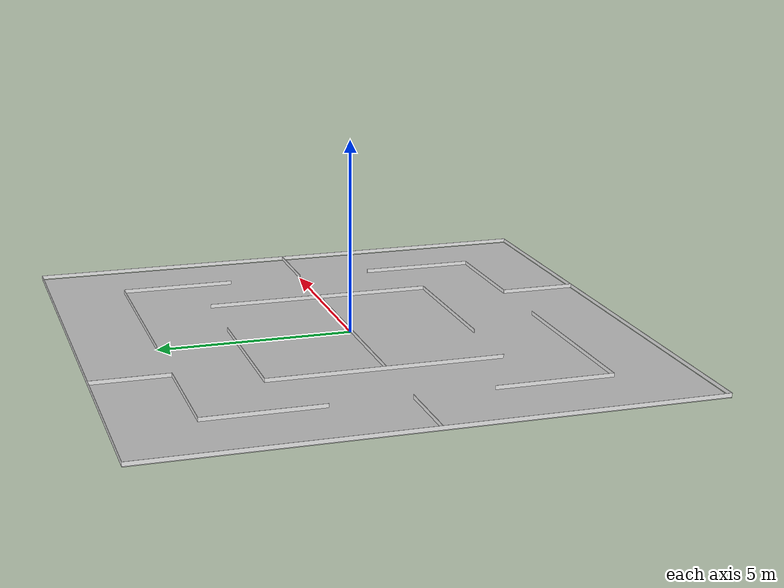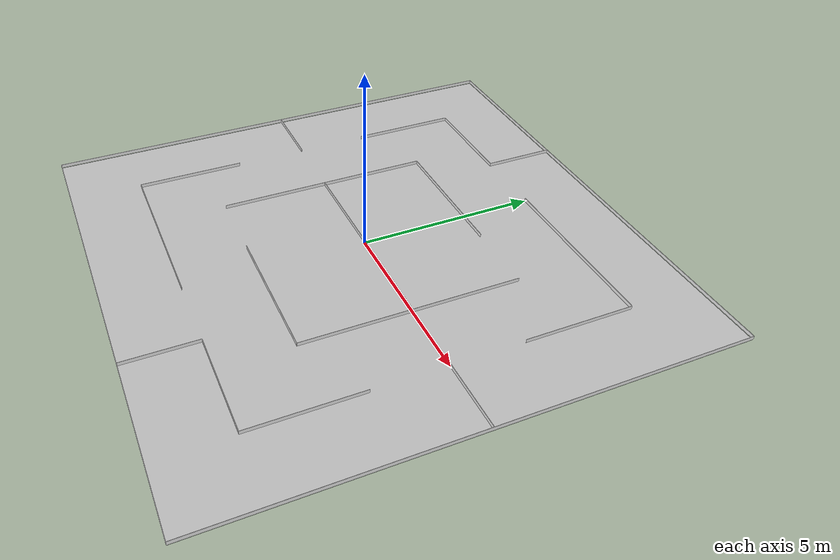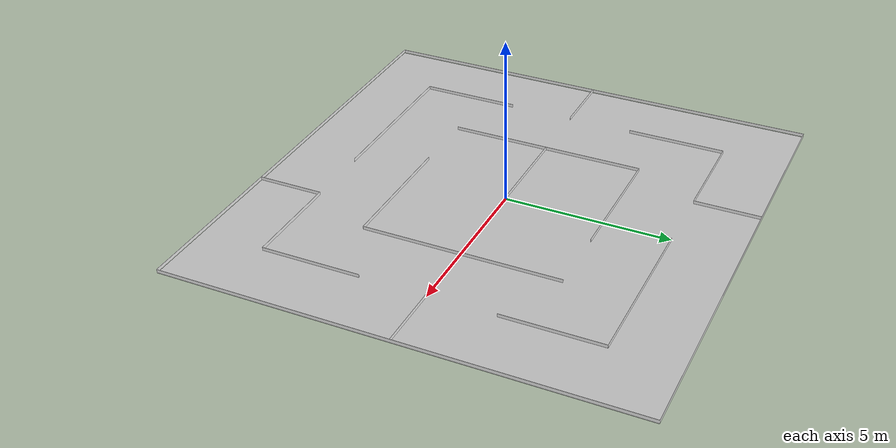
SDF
<?xml version="1.0"?>
<sdf version='1.6'>
    <world name='ril_agv_simulator'>
        <include>
            <uri>model://sun</uri>
        </include>
        <include>
            <uri>model://floor</uri>
        </include>
        <include>
            <uri>model://walls</uri>
        </include>
        <physics type='ode'>
            <max_step_size>0.001</max_step_size>
            <real_time_factor>1.000000</real_time_factor>
            <real_time_update_rate>1000.0</real_time_update_rate>
            <ode>
                <solver>
                    <type>quick</type>
                    <iters>200</iters>
                </solver>
            </ode>
        </physics>
    </world>
</sdf>

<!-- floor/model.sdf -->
<sdf version="1.6">
<model name="floor">
  <static>true</static>
    <link name="link">
      <collision name="collision">
        <geometry>
          <plane>
            <normal>0 0 1</normal>
            <size>14 14</size>
          </plane>
        </geometry>
        <surface>
          <friction>
            <ode>
              <mu>100</mu>
              <mu2>50</mu2>
            </ode>
          </friction>
        </surface>
      </collision>
      <visual name="visual">
        <cast_shadows>false</cast_shadows>
        <geometry>
          <plane>
            <normal>0 0 1</normal>
            <size>14 14</size>
          </plane>
        </geometry>
        <material>
          <script>
            <uri>model://floor/materials/scripts</uri>
            <uri>model://floor/materials/textures</uri>
            <name>Floor/Image</name>
          </script>
        </material>
      </visual>
    </link>
  </model>
</sdf>

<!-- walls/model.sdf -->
<sdf version="1.5">
  <model name="walls">
    <static>true</static>
    <link name="top">
      <pose>0 7 0.05 0 0 0</pose>
      <collision name="collision">
        <geometry>
          <box>
            <size>14 0.01 0.1</size>
          </box>
        </geometry>
        <surface>
          <friction>
            <ode>
              <mu>100</mu>
              <mu2>50</mu2>
            </ode>
          </friction>
        </surface>
      </collision>
      <visual name="visual">
        <cast_shadows>false</cast_shadows>
        <geometry>
          <box>
            <size>14 0.01 0.1</size>
          </box>
        </geometry>
        <material>
          <script>
            <uri>file://media/materials/scripts/gazebo.material</uri>
            <name>Gazebo/White</name>
          </script>
        </material>
      </visual>
    </link>
    <link name="bottom">
      <pose>0 -7 0.05 0 0 0</pose>
      <collision name="collision">
        <geometry>
          <box>
            <size>14 0.01 0.1</size>
          </box>
        </geometry>
        <surface>
          <friction>
            <ode>
              <mu>100</mu>
              <mu2>50</mu2>
            </ode>
          </friction>
        </surface>
      </collision>
      <visual name="visual">
        <cast_shadows>false</cast_shadows>
        <geometry>
          <box>
            <size>14 0.01 0.1</size>
          </box>
        </geometry>
        <material>
          <script>
            <uri>file://media/materials/scripts/gazebo.material</uri>
            <name>Gazebo/White</name>
          </script>
        </material>
      </visual>
    </link>
    <link name="left">
      <pose>-7 0 0.05 0 0 0</pose>
      <collision name="collision">
        <geometry>
          <box>
            <size>0.01 14 0.1</size>
          </box>
        </geometry>
        <surface>
          <friction>
            <ode>
              <mu>100</mu>
              <mu2>50</mu2>
            </ode>
          </friction>
        </surface>
      </collision>
      <visual name="visual">
        <cast_shadows>false</cast_shadows>
        <geometry>
          <box>
            <size>0.01 14 0.1</size>
          </box>
        </geometry>
        <material>
          <script>
            <uri>file://media/materials/scripts/gazebo.material</uri>
            <name>Gazebo/White</name>
          </script>
        </material>
      </visual>
    </link>
    <link name="right">
      <pose>7 0 0.05 0 0 0</pose>
      <collision name="collision">
        <geometry>
          <box>
            <size>0.01 14 0.1</size>
          </box>
        </geometry>
        <surface>
          <friction>
            <ode>
              <mu>100</mu>
              <mu2>50</mu2>
            </ode>
          </friction>
        </surface>
      </collision>
      <visual name="visual">
        <cast_shadows>false</cast_shadows>
        <geometry>
          <box>
            <size>0.01 14 0.1</size>
          </box>
        </geometry>
        <material>
          <script>
            <uri>file://media/materials/scripts/gazebo.material</uri>
            <name>Gazebo/White</name>
          </script>
        </material>
      </visual>
    </link>
    <link name="vert1">
      <pose>-5 3.5 0.05 0 0 0</pose>
      <collision name="collision">
        <geometry>
          <box>
            <size>0.01 3 0.1</size>
          </box>
        </geometry>
        <surface>
          <friction>
            <ode>
              <mu>100</mu>
              <mu2>50</mu2>
            </ode>
          </friction>
        </surface>
      </collision>
      <visual name="visual">
        <cast_shadows>false</cast_shadows>
        <geometry>
          <box>
            <size>0.01 3 0.1</size>
          </box>
        </geometry>
        <material>
          <script>
            <uri>file://media/materials/scripts/gazebo.material</uri>
            <name>Gazebo/White</name>
          </script>
        </material>
      </visual>
    </link>
    <link name="vert3">
      <pose>-2 6 0.05 0 0 0</pose>
      <collision name="collision">
        <geometry>
          <box>
            <size>0.01 2 0.1</size>
          </box>
        </geometry>
        <surface>
          <friction>
            <ode>
              <mu>100</mu>
              <mu2>50</mu2>
            </ode>
          </friction>
        </surface>
      </collision>
      <visual name="visual">
        <cast_shadows>false</cast_shadows>
        <geometry>
          <box>
            <size>0.01 2 0.1</size>
          </box>
        </geometry>
        <material>
          <script>
            <uri>file://media/materials/scripts/gazebo.material</uri>
            <name>Gazebo/White</name>
          </script>
        </material>
      </visual>
    </link>
    <link name="vert5">
      <pose>5 3.5 0.05 0 0 0</pose>
      <collision name="collision">
        <geometry>
          <box>
            <size>0.01 3 0.1</size>
          </box>
        </geometry>
        <surface>
          <friction>
            <ode>
              <mu>100</mu>
              <mu2>50</mu2>
            </ode>
          </friction>
        </surface>
      </collision>
      <visual name="visual">
        <cast_shadows>false</cast_shadows>
        <geometry>
          <box>
            <size>0.01 3 0.1</size>
          </box>
        </geometry>
        <material>
          <script>
            <uri>file://media/materials/scripts/gazebo.material</uri>
            <name>Gazebo/White</name>
          </script>
        </material>
      </visual>
    </link>
    <link name="vert7">
      <pose>5 -3.5 0.05 0 0 0</pose>
      <collision name="collision">
        <geometry>
          <box>
            <size>0.01 3 0.1</size>
          </box>
        </geometry>
        <surface>
          <friction>
            <ode>
              <mu>100</mu>
              <mu2>50</mu2>
            </ode>
          </friction>
        </surface>
      </collision>
      <visual name="visual">
        <cast_shadows>false</cast_shadows>
        <geometry>
          <box>
            <size>0.01 3 0.1</size>
          </box>
        </geometry>
        <material>
          <script>
            <uri>file://media/materials/scripts/gazebo.material</uri>
            <name>Gazebo/White</name>
          </script>
        </material>
      </visual>
    </link>
    <link name="vert9">
      <pose>2 -6 0.05 0 0 0</pose>
      <collision name="collision">
        <geometry>
          <box>
            <size>0.01 2 0.1</size>
          </box>
        </geometry>
        <surface>
          <friction>
            <ode>
              <mu>100</mu>
              <mu2>50</mu2>
            </ode>
          </friction>
        </surface>
      </collision>
      <visual name="visual">
        <cast_shadows>false</cast_shadows>
        <geometry>
          <box>
            <size>0.01 2 0.1</size>
          </box>
        </geometry>
        <material>
          <script>
            <uri>file://media/materials/scripts/gazebo.material</uri>
            <name>Gazebo/White</name>
          </script>
        </material>
      </visual>
    </link>
    <link name="vert11">
      <pose>-5 -3.5 0.05 0 0 0</pose>
      <collision name="collision">
        <geometry>
          <box>
            <size>0.01 3 0.1</size>
          </box>
        </geometry>
        <surface>
          <friction>
            <ode>
              <mu>100</mu>
              <mu2>50</mu2>
            </ode>
          </friction>
        </surface>
      </collision>
      <visual name="visual">
        <cast_shadows>false</cast_shadows>
        <geometry>
          <box>
            <size>0.01 3 0.1</size>
          </box>
        </geometry>
        <material>
          <script>
            <uri>file://media/materials/scripts/gazebo.material</uri>
            <name>Gazebo/White</name>
          </script>
        </material>
      </visual>
    </link>
    <link name="vert13">
      <pose>-3 0 0.05 0 0 0</pose>
      <collision name="collision">
        <geometry>
          <box>
            <size>0.01 6 0.1</size>
          </box>
        </geometry>
        <surface>
          <friction>
            <ode>
              <mu>100</mu>
              <mu2>50</mu2>
            </ode>
          </friction>
        </surface>
      </collision>
      <visual name="visual">
        <cast_shadows>false</cast_shadows>
        <geometry>
          <box>
            <size>0.01 6 0.1</size>
          </box>
        </geometry>
        <material>
          <script>
            <uri>file://media/materials/scripts/gazebo.material</uri>
            <name>Gazebo/White</name>
          </script>
        </material>
      </visual>
    </link>
    <link name="vert16">
      <pose>3 0 0.05 0 0 0</pose>
      <collision name="collision">
        <geometry>
          <box>
            <size>0.01 6 0.1</size>
          </box>
        </geometry>
        <surface>
          <friction>
            <ode>
              <mu>100</mu>
              <mu2>50</mu2>
            </ode>
          </friction>
        </surface>
      </collision>
      <visual name="visual">
        <cast_shadows>false</cast_shadows>
        <geometry>
          <box>
            <size>0.01 6 0.1</size>
          </box>
        </geometry>
        <material>
          <script>
            <uri>file://media/materials/scripts/gazebo.material</uri>
            <name>Gazebo/White</name>
          </script>
        </material>
      </visual>
    </link>
    <link name="hori2">
      <pose>-3.5 5 0.05 0 0 0</pose>
      <collision name="collision">
        <geometry>
          <box>
            <size>3 0.01 0.1</size>
          </box>
        </geometry>
        <surface>
          <friction>
            <ode>
              <mu>100</mu>
              <mu2>50</mu2>
            </ode>
          </friction>
        </surface>
      </collision>
      <visual name="visual">
        <cast_shadows>false</cast_shadows>
        <geometry>
          <box>
            <size>3 0.01 0.1</size>
          </box>
        </geometry>
        <material>
          <script>
            <uri>file://media/materials/scripts/gazebo.material</uri>
            <name>Gazebo/White</name>
          </script>
        </material>
      </visual>
    </link>
    <link name="hori4">
      <pose>2.5 5 0.05 0 0 0</pose>
      <collision name="collision">
        <geometry>
          <box>
            <size>5 0.01 0.1</size>
          </box>
        </geometry>
        <surface>
          <friction>
            <ode>
              <mu>100</mu>
              <mu2>50</mu2>
            </ode>
          </friction>
        </surface>
      </collision>
      <visual name="visual">
        <cast_shadows>false</cast_shadows>
        <geometry>
          <box>
            <size>5 0.01 0.1</size>
          </box>
        </geometry>
        <material>
          <script>
            <uri>file://media/materials/scripts/gazebo.material</uri>
            <name>Gazebo/White</name>
          </script>
        </material>
      </visual>
    </link>
    <link name="hori6">
      <pose>6 0 0.05 0 0 0</pose>
      <collision name="collision">
        <geometry>
          <box>
            <size>2 0.01 0.1</size>
          </box>
        </geometry>
        <surface>
          <friction>
            <ode>
              <mu>100</mu>
              <mu2>50</mu2>
            </ode>
          </friction>
        </surface>
      </collision>
      <visual name="visual">
        <cast_shadows>false</cast_shadows>
        <geometry>
          <box>
            <size>2 0.01 0.1</size>
          </box>
        </geometry>
        <material>
          <script>
            <uri>file://media/materials/scripts/gazebo.material</uri>
            <name>Gazebo/White</name>
          </script>
        </material>
      </visual>
    </link>
    <link name="hori8">
      <pose>3.5 -5 0.05 0 0 0</pose>
      <collision name="collision">
        <geometry>
          <box>
            <size>3 0.01 0.1</size>
          </box>
        </geometry>
        <surface>
          <friction>
            <ode>
              <mu>100</mu>
              <mu2>50</mu2>
            </ode>
          </friction>
        </surface>
      </collision>
      <visual name="visual">
        <cast_shadows>false</cast_shadows>
        <geometry>
          <box>
            <size>3 0.01 0.1</size>
          </box>
        </geometry>
        <material>
          <script>
            <uri>file://media/materials/scripts/gazebo.material</uri>
            <name>Gazebo/White</name>
          </script>
        </material>
      </visual>
    </link>
    <link name="hori10">
      <pose>-2.5 -5 0.05 0 0 0</pose>
      <collision name="collision">
        <geometry>
          <box>
            <size>5 0.01 0.1</size>
          </box>
        </geometry>
        <surface>
          <friction>
            <ode>
              <mu>100</mu>
              <mu2>50</mu2>
            </ode>
          </friction>
        </surface>
      </collision>
      <visual name="visual">
        <cast_shadows>false</cast_shadows>
        <geometry>
          <box>
            <size>5 0.01 0.1</size>
          </box>
        </geometry>
        <material>
          <script>
            <uri>file://media/materials/scripts/gazebo.material</uri>
            <name>Gazebo/White</name>
          </script>
        </material>
      </visual>
    </link>
    <link name="hori12">
      <pose>-6 0 0.05 0 0 0</pose>
      <collision name="collision">
        <geometry>
          <box>
            <size>2 0.01 0.1</size>
          </box>
        </geometry>
        <surface>
          <friction>
            <ode>
              <mu>100</mu>
              <mu2>50</mu2>
            </ode>
          </friction>
        </surface>
      </collision>
      <visual name="visual">
        <cast_shadows>false</cast_shadows>
        <geometry>
          <box>
            <size>2 0.01 0.1</size>
          </box>
        </geometry>
        <material>
          <script>
            <uri>file://media/materials/scripts/gazebo.material</uri>
            <name>Gazebo/White</name>
          </script>
        </material>
      </visual>
    </link>
    <link name="hori14">
      <pose>-1 3 0.05 0 0 0</pose>
      <collision name="collision">
        <geometry>
          <box>
            <size>4 0.01 0.1</size>
          </box>
        </geometry>
        <surface>
          <friction>
            <ode>
              <mu>100</mu>
              <mu2>50</mu2>
            </ode>
          </friction>
        </surface>
      </collision>
      <visual name="visual">
        <cast_shadows>false</cast_shadows>
        <geometry>
          <box>
            <size>4 0.01 0.1</size>
          </box>
        </geometry>
        <material>
          <script>
            <uri>file://media/materials/scripts/gazebo.material</uri>
            <name>Gazebo/White</name>
          </script>
        </material>
      </visual>
    </link>
    <link name="hori17">
      <pose>1 -3 0.05 0 0 0</pose>
      <collision name="collision">
        <geometry>
          <box>
            <size>4 0.01 0.1</size>
          </box>
        </geometry>
        <surface>
          <friction>
            <ode>
              <mu>100</mu>
              <mu2>50</mu2>
            </ode>
          </friction>
        </surface>
      </collision>
      <visual name="visual">
        <cast_shadows>false</cast_shadows>
        <geometry>
          <box>
            <size>4 0.01 0.1</size>
          </box>
        </geometry>
        <material>
          <script>
            <uri>file://media/materials/scripts/gazebo.material</uri>
            <name>Gazebo/White</name>
          </script>
        </material>
      </visual>
    </link>
    <link name="hori19">
      <pose>0 0 0.05 0 0 0</pose>
      <collision name="collision">
        <geometry>
          <box>
            <size>6 0.01 0.1</size>
          </box>
        </geometry>
        <surface>
          <friction>
            <ode>
              <mu>100</mu>
              <mu2>50</mu2>
            </ode>
          </friction>
        </surface>
      </collision>
      <visual name="visual">
        <cast_shadows>false</cast_shadows>
        <geometry>
          <box>
            <size>6 0.01 0.1</size>
          </box>
        </geometry>
        <material>
          <script>
            <uri>file://media/materials/scripts/gazebo.material</uri>
            <name>Gazebo/White</name>
          </script>
        </material>
      </visual>
    </link>
  </model>
</sdf>
